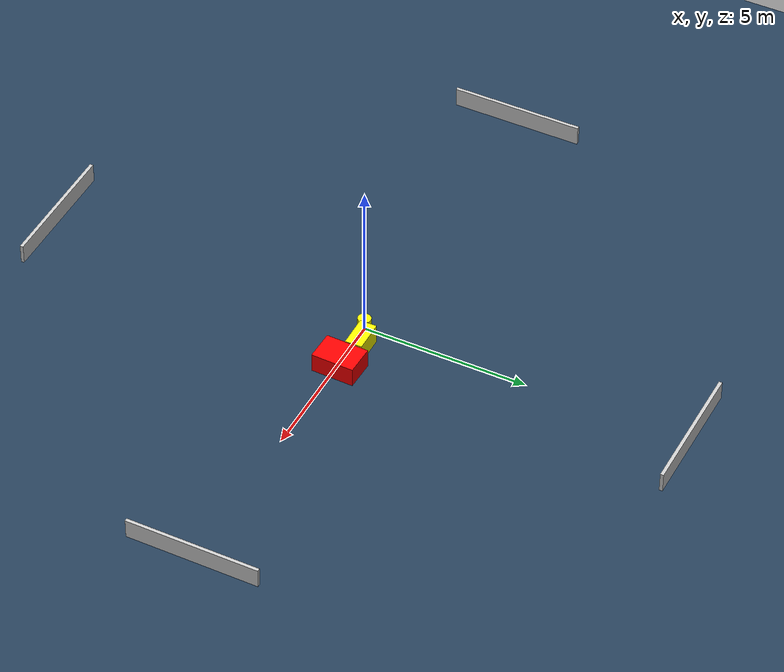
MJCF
<?xml version="1.0" ?>
<mujoco model="generated_environment">
  <option timestep="0.01" integrator="RK4" cone="elliptic"/>
  <default>
    <geom density="1"/>
  </default>
  <asset>
    <texture builtin="gradient" height="3072" name="skybox" rgb1="0.3 0.5 0.7" rgb2="0 0 0" type="skybox" width="512"/>
    <texture builtin="checker" height="300" name="groundplane" rgb1="0.2 0.3 0.4" rgb2="0.1 0.2 0.3" type="2d" width="300"/>
    <material name="groundplane" reflectance="0.2" texrepeat="5 5" texture="groundplane"/>
  </asset>
  <worldbody>
    <light dir="0 0 -1" directional="true" pos="0 0 1.5"/>
    <geom condim="3" friction="0.5 0.005 0.001" material="groundplane" name="floor" pos="0 0 0" size="0 0 0.05" type="plane"/>
    <body name="walls">
      <geom name="wall_1" condim="4" pos="-10.0 0.0 0.3" rgba="0.800000011920929 0.800000011920929 0.800000011920929 1.0" size="0.05 2.0 0.3" type="box"/>
      <geom name="wall_2" condim="4" pos="10.0 0.0 0.3" rgba="0.800000011920929 0.800000011920929 0.800000011920929 1.0" size="0.05 2.0 0.3" type="box"/>
      <geom name="wall_3" condim="4" pos="0.0 -10.0 0.3" rgba="0.800000011920929 0.800000011920929 0.800000011920929 1.0" size="2.0 0.05 0.3" type="box"/>
      <geom name="wall_4" condim="4" pos="0.0 10.0 0.3" rgba="0.800000011920929 0.800000011920929 0.800000011920929 1.0" size="2.0 0.05 0.3" type="box"/>
    </body>
    <body name="robot">
      <joint name="joint_x" type="slide" pos="0 0 0" axis="1 0 0"/>
      <joint name="joint_y" type="slide" pos="0 0 0" axis="0 1 0"/>
      <geom name="robot" type="cylinder" pos="0.0 0.0 0.2" size="0.2 0.2 0.0" mass="5.0" friction="1.0 0.005 0.0001" condim="4" rgba="1.0 1.0 0.0 1.0"/>
    </body>
    <body name="obstacle_1_movable">
      <geom name="obstacle_1_movable" condim="4" pos="0.7899634734272866 0.2935747540051809 0.3" euler="0 0 90.61276744887155" friction="0.0 0.005 0.001" rgba="1.0 1.0 0.0 1.0" size="0.25589363160438566 0.47507437592464435 0.3" type="box" mass="0.1"/>
      <joint type="free"/>
    </body>
    <body name="obstacle_2_static">
      <geom name="obstacle_2_static" condim="4" pos="1.7425704143100005 0.1197862605198925 0.3" euler="0 0 268.36880081059763" friction="0.0 0.005 0.001" rgba="1.0 0.0 0.0 1.0" size="0.6455675444580483 0.44938624513567843 0.3" type="box"/>
    </body>
  </worldbody>
  <actuator>
    <motor name="actuator_x" joint="joint_x" gear="1" ctrlrange="-1 1"/>
    <motor name="actuator_y" joint="joint_y" gear="1" ctrlrange="-1 1"/>
  </actuator>
</mujoco>
